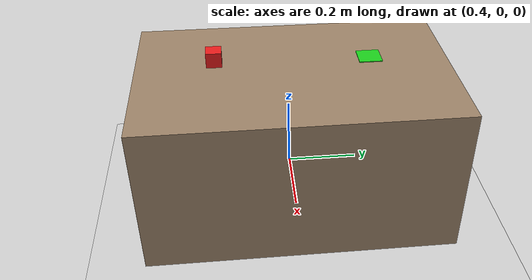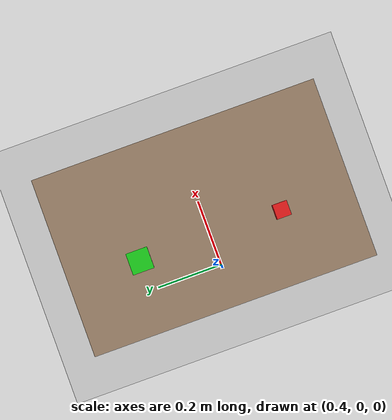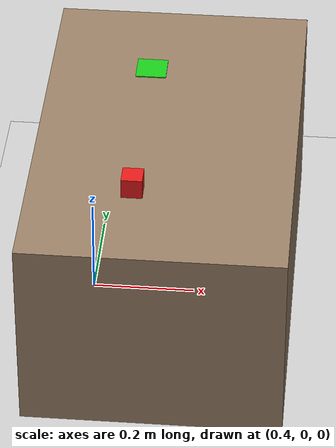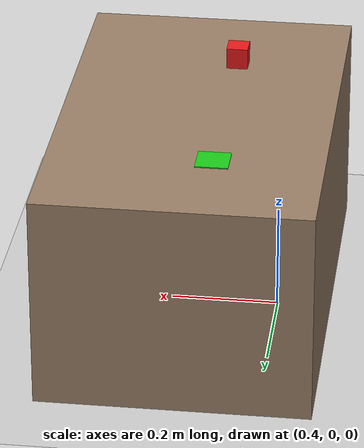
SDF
<?xml version="1.0" ?>
<sdf version="1.6">
  <world name="ur5e_experiment">
    <plugin name="gazebo_ros_state" filename="libgazebo_ros_state.so">
      <ros><namespace>/gazebo</namespace></ros>
      <update_rate>100</update_rate>
    </plugin>

    <include><uri>model://sun</uri></include>
    <include><uri>model://ground_plane</uri></include>
    <physics type="ode">
      <max_step_size>0.002</max_step_size>
      <real_time_update_rate>500</real_time_update_rate>
    <ode><solver><type>quick</type><iters>150</iters></solver></ode></physics>

    <model name="table">
      <static>true</static>
      <pose>0.55 0 0.2 0 0 0</pose>
      <link name="link">
        <collision name="c"><geometry><box><size>0.5 0.8 0.4</size></box></geometry></collision>
        <visual name="v"><geometry><box><size>0.5 0.8 0.4</size></box></geometry>
          <material><ambient>0.6 0.5 0.4 1</ambient></material></visual>
      </link>
    </model>

    <model name="cube">
      <pose>0.5 -0.2 0.42 0 0 0</pose>
      <link name="link">
        <inertial><mass>0.2</mass>
          <inertia><ixx>5.33e-5</ixx><iyy>5.33e-5</iyy><izz>5.33e-5</izz><ixy>0</ixy><ixz>0</ixz><iyz>0</iyz></inertia>
        </inertial>
        <collision name="c"><geometry><box><size>0.04 0.04 0.04</size></box></geometry>
          <surface><friction><ode><mu>0.5</mu><mu2>0.5</mu2></ode></friction><contact><ode><kp>1e6</kp><kd>1</kd><min_depth>0.001</min_depth></ode></contact></surface></collision>
        <visual name="v"><geometry><box><size>0.04 0.04 0.04</size></box></geometry>
          <material><ambient>0.9 0.1 0.1 1</ambient></material></visual>
      </link>
    </model>

    <model name="target">
      <static>true</static>
      <pose>0.5 0.2 0.401 0 0 0</pose>
      <link name="link">
        <visual name="v"><geometry><box><size>0.06 0.06 0.002</size></box></geometry>
          <material><ambient>0.1 0.8 0.1 1</ambient></material></visual>
      </link>
    </model>
  </world>
</sdf>
